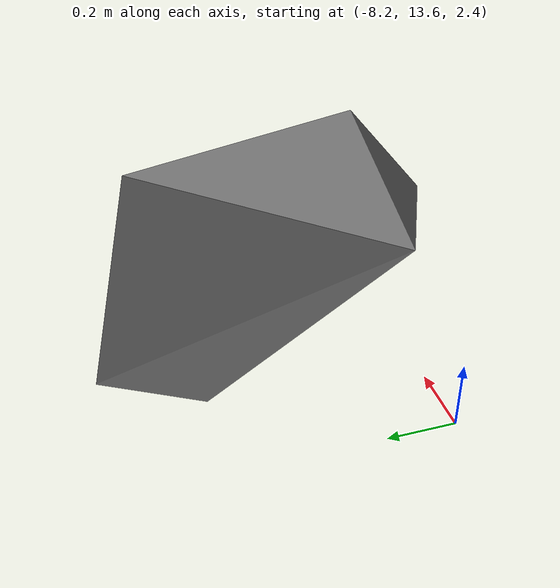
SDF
<sdf version="1.8">
 <model name="blue_mountains">
  <static>true</static>
  <link name="forest_19_21">
   <collision name="tree_9_trunk">
    <pose>-7.749354 14.27751 0.6087311 0 0 0.5486965</pose>
    <geometry><cylinder><radius>0.03873321</radius><length>2.144047</length></cylinder></geometry>
   </collision>
   <collision name="plant_9_crown_0">
    <pose>-7.762573 14.26943 -0.4632926 0 0 0.5486965</pose>
    <geometry>
     <mesh>
      <uri>model://blue_mountains/meshes/canopy_4_0.dae</uri>
      <scale>0.1549328 0.1549328 0.1597673</scale>
     </mesh>
    </geometry>
   </collision>
   <collision name="plant_9_crown_1">
    <pose>-7.762573 14.26943 -0.4632926 0 0 0.5486965</pose>
    <geometry>
     <mesh>
      <uri>model://blue_mountains/meshes/canopy_4_1.dae</uri>
      <scale>0.1549328 0.1549328 0.1597673</scale>
     </mesh>
    </geometry>
   </collision>
   <collision name="tree_101_trunk">
    <pose>-1.41527 18.55037 2.710792 0 0 1.07421</pose>
    <geometry><cylinder><radius>0.04672912</radius><length>2.79636</length></cylinder></geometry>
   </collision>
   <collision name="plant_101_crown_0">
    <pose>-1.424175 18.53394 1.312612 0 0 1.07421</pose>
    <geometry>
     <mesh>
      <uri>model://blue_mountains/meshes/canopy_2_0.dae</uri>
      <scale>0.1869165 0.1869165 0.2057433</scale>
     </mesh>
    </geometry>
   </collision>
   <collision name="plant_101_crown_1">
    <pose>-1.424175 18.53394 1.312612 0 0 1.07421</pose>
    <geometry>
     <mesh>
      <uri>model://blue_mountains/meshes/canopy_2_1.dae</uri>
      <scale>0.1869165 0.1869165 0.2057433</scale>
     </mesh>
    </geometry>
   </collision>
   <collision name="tree_107_trunk">
    <pose>-9.662786 13.92559 0.811804 0 0 1.850598</pose>
    <geometry><cylinder><radius>0.04866661</radius><length>2.87574</length></cylinder></geometry>
   </collision>
   <collision name="plant_107_crown_0">
    <pose>-9.65741 13.90688 -0.626066 0 0 1.850598</pose>
    <geometry>
     <mesh>
      <uri>model://blue_mountains/meshes/canopy_5_0.dae</uri>
      <scale>0.1946665 0.1946665 0.2161537</scale>
     </mesh>
    </geometry>
   </collision>
   <collision name="plant_107_crown_1">
    <pose>-9.65741 13.90688 -0.626066 0 0 1.850598</pose>
    <geometry>
     <mesh>
      <uri>model://blue_mountains/meshes/canopy_5_1.dae</uri>
      <scale>0.1946665 0.1946665 0.2161537</scale>
     </mesh>
    </geometry>
   </collision>
   <collision name="tree_115_trunk">
    <pose>-0.8330783 19.09846 2.739341 0 0 -2.786092</pose>
    <geometry><cylinder><radius>0.03753752</radius><length>2.250223</length></cylinder></geometry>
   </collision>
   <collision name="plant_115_crown_0">
    <pose>-0.8190022 19.10369 1.614229 0 0 -2.786092</pose>
    <geometry>
     <mesh>
      <uri>model://blue_mountains/meshes/canopy_3_0.dae</uri>
      <scale>0.1501501 0.1501501 0.1672937</scale>
     </mesh>
    </geometry>
   </collision>
   <collision name="plant_115_crown_1">
    <pose>-0.8190022 19.10369 1.614229 0 0 -2.786092</pose>
    <geometry>
     <mesh>
      <uri>model://blue_mountains/meshes/canopy_3_1.dae</uri>
      <scale>0.1501501 0.1501501 0.1672937</scale>
     </mesh>
    </geometry>
   </collision>
   <collision name="tree_132_trunk">
    <pose>-7.74738 12.39687 0.8091848 0 0 2.858679</pose>
    <geometry><cylinder><radius>0.06067959</radius><length>3.022093</length></cylinder></geometry>
   </collision>
   <collision name="plant_132_crown_0">
    <pose>-7.724073 12.39009 -0.7018619 0 0 2.858679</pose>
    <geometry>
     <mesh>
      <uri>model://blue_mountains/meshes/canopy_6_0.dae</uri>
      <scale>0.2427184 0.2427184 0.222765</scale>
     </mesh>
    </geometry>
   </collision>
   <collision name="plant_132_crown_1">
    <pose>-7.724073 12.39009 -0.7018619 0 0 2.858679</pose>
    <geometry>
     <mesh>
      <uri>model://blue_mountains/meshes/canopy_6_1.dae</uri>
      <scale>0.2427184 0.2427184 0.222765</scale>
     </mesh>
    </geometry>
   </collision>
   <collision name="tree_154_trunk">
    <pose>-5.133274 18.00331 2.443947 0 0 1.769965</pose>
    <geometry><cylinder><radius>0.06742614</radius><length>3.459712</length></cylinder></geometry>
   </collision>
   <collision name="plant_154_crown_0">
    <pose>-5.127937 17.97688 0.7140913 0 0 1.769965</pose>
    <geometry>
     <mesh>
      <uri>model://blue_mountains/meshes/canopy_2_0.dae</uri>
      <scale>0.2697046 0.2697046 0.2545496</scale>
     </mesh>
    </geometry>
   </collision>
   <collision name="plant_154_crown_1">
    <pose>-5.127937 17.97688 0.7140913 0 0 1.769965</pose>
    <geometry>
     <mesh>
      <uri>model://blue_mountains/meshes/canopy_2_1.dae</uri>
      <scale>0.2697046 0.2697046 0.2545496</scale>
     </mesh>
    </geometry>
   </collision>
   <collision name="tree_158_trunk">
    <pose>-0.7650382 17.70156 2.764641 0 0 2.606011</pose>
    <geometry><cylinder><radius>0.05212295</radius><length>3.273788</length></cylinder></geometry>
   </collision>
   <collision name="plant_158_crown_0">
    <pose>-0.7471085 17.69092 1.127747 0 0 2.606011</pose>
    <geometry>
     <mesh>
      <uri>model://blue_mountains/meshes/canopy_8_0.dae</uri>
      <scale>0.2084918 0.2084918 0.2435992</scale>
     </mesh>
    </geometry>
   </collision>
   <collision name="plant_158_crown_1">
    <pose>-0.7471085 17.69092 1.127747 0 0 2.606011</pose>
    <geometry>
     <mesh>
      <uri>model://blue_mountains/meshes/canopy_8_1.dae</uri>
      <scale>0.2084918 0.2084918 0.2435992</scale>
     </mesh>
    </geometry>
   </collision>
   <collision name="tree_170_trunk">
    <pose>-5.59117 10.59843 2.09273 0 0 -1.340736</pose>
    <geometry><cylinder><radius>0.04143292</radius><length>2.615858</length></cylinder></geometry>
   </collision>
   <collision name="plant_170_crown_0">
    <pose>-5.59495 10.61457 0.784801 0 0 -1.340736</pose>
    <geometry>
     <mesh>
      <uri>model://blue_mountains/meshes/canopy_2_0.dae</uri>
      <scale>0.1657317 0.1657317 0.1924627</scale>
     </mesh>
    </geometry>
   </collision>
   <collision name="plant_170_crown_1">
    <pose>-5.59495 10.61457 0.784801 0 0 -1.340736</pose>
    <geometry>
     <mesh>
      <uri>model://blue_mountains/meshes/canopy_2_1.dae</uri>
      <scale>0.1657317 0.1657317 0.1924627</scale>
     </mesh>
    </geometry>
   </collision>
   <collision name="tree_173_trunk">
    <pose>-6.674477 14.41577 1.503934 0 0 -0.7087129</pose>
    <geometry><cylinder><radius>0.05780722</radius><length>3.723181</length></cylinder></geometry>
   </collision>
   <collision name="plant_173_crown_0">
    <pose>-6.692032 14.43082 -0.3576562 0 0 -0.7087129</pose>
    <geometry>
     <mesh>
      <uri>model://blue_mountains/meshes/canopy_1_0.dae</uri>
      <scale>0.2312289 0.2312289 0.2749972</scale>
     </mesh>
    </geometry>
   </collision>
   <collision name="plant_173_crown_1">
    <pose>-6.692032 14.43082 -0.3576562 0 0 -0.7087129</pose>
    <geometry>
     <mesh>
      <uri>model://blue_mountains/meshes/canopy_1_1.dae</uri>
      <scale>0.2312289 0.2312289 0.2749972</scale>
     </mesh>
    </geometry>
   </collision>
   <collision name="tree_189_trunk">
    <pose>-9.635672 17.01209 1.64238 0 0 -2.180271</pose>
    <geometry><cylinder><radius>0.061286</radius><length>3.104781</length></cylinder></geometry>
   </collision>
   <collision name="plant_189_crown_0">
    <pose>-9.621639 17.03219 0.08998942 0 0 -2.180271</pose>
    <geometry>
     <mesh><uri>model://blue_mountains/meshes/canopy_4_0.dae</uri><scale>0.245144 0.245144 0.2313579</scale></mesh>
    </geometry>
   </collision>
   <collision name="plant_189_crown_1">
    <pose>-9.621639 17.03219 0.08998942 0 0 -2.180271</pose>
    <geometry>
     <mesh><uri>model://blue_mountains/meshes/canopy_4_1.dae</uri><scale>0.245144 0.245144 0.2313579</scale></mesh>
    </geometry>
   </collision>
   <collision name="tree_194_trunk">
    <pose>-4.021845 19.38885 2.321721 0 0 1.231267</pose>
    <geometry><cylinder><radius>0.0360108</radius><length>1.996998</length></cylinder></geometry>
   </collision>
   <collision name="plant_194_crown_0">
    <pose>-4.026642 19.37527 1.323222 0 0 1.231267</pose>
    <geometry>
     <mesh>
      <uri>model://blue_mountains/meshes/canopy_3_0.dae</uri>
      <scale>0.1440432 0.1440432 0.1484675</scale>
     </mesh>
    </geometry>
   </collision>
   <collision name="plant_194_crown_1">
    <pose>-4.026642 19.37527 1.323222 0 0 1.231267</pose>
    <geometry>
     <mesh>
      <uri>model://blue_mountains/meshes/canopy_3_1.dae</uri>
      <scale>0.1440432 0.1440432 0.1484675</scale>
     </mesh>
    </geometry>
   </collision>
   <collision name="tree_195_trunk">
    <pose>-2.403276 12.357 1.933132 0 0 0.992482</pose>
    <geometry><cylinder><radius>0.0724251</radius><length>4.390301</length></cylinder></geometry>
   </collision>
   <collision name="plant_195_crown_0">
    <pose>-2.419111 12.33274 -0.2620192 0 0 0.992482</pose>
    <geometry>
     <mesh>
      <uri>model://blue_mountains/meshes/canopy_2_0.dae</uri>
      <scale>0.2897004 0.2897004 0.3230181</scale>
     </mesh>
    </geometry>
   </collision>
   <collision name="plant_195_crown_1">
    <pose>-2.419111 12.33274 -0.2620192 0 0 0.992482</pose>
    <geometry>
     <mesh>
      <uri>model://blue_mountains/meshes/canopy_2_1.dae</uri>
      <scale>0.2897004 0.2897004 0.3230181</scale>
     </mesh>
    </geometry>
   </collision>
   <collision name="tree_218_trunk">
    <pose>-7.609633 18.14726 2.117375 0 0 1.855371</pose>
    <geometry><cylinder><radius>0.05481712</radius><length>3.109203</length></cylinder></geometry>
   </collision>
   <collision name="plant_218_crown_0">
    <pose>-7.603477 18.12621 0.5627737 0 0 1.855371</pose>
    <geometry>
     <mesh>
      <uri>model://blue_mountains/meshes/canopy_1_0.dae</uri>
      <scale>0.2192685 0.2192685 0.2296483</scale>
     </mesh>
    </geometry>
   </collision>
   <collision name="plant_218_crown_1">
    <pose>-7.603477 18.12621 0.5627737 0 0 1.855371</pose>
    <geometry>
     <mesh>
      <uri>model://blue_mountains/meshes/canopy_1_1.dae</uri>
      <scale>0.2192685 0.2192685 0.2296483</scale>
     </mesh>
    </geometry>
   </collision>
   <collision name="tree_291_trunk">
    <pose>-7.440081 15.78451 1.176549 0 0 2.330481</pose>
    <geometry><cylinder><radius>0.04610728</radius><length>2.596587</length></cylinder></geometry>
   </collision>
   <collision name="plant_291_crown_0">
    <pose>-7.42738 15.77114 -0.1217446 0 0 2.330481</pose>
    <geometry>
     <mesh>
      <uri>model://blue_mountains/meshes/canopy_6_0.dae</uri>
      <scale>0.1844291 0.1844291 0.1914001</scale>
     </mesh>
    </geometry>
   </collision>
   <collision name="plant_291_crown_1">
    <pose>-7.42738 15.77114 -0.1217446 0 0 2.330481</pose>
    <geometry>
     <mesh>
      <uri>model://blue_mountains/meshes/canopy_6_1.dae</uri>
      <scale>0.1844291 0.1844291 0.1914001</scale>
     </mesh>
    </geometry>
   </collision>
   <collision name="tree_304_trunk">
    <pose>-9.871956 13.5523 0.1872127 0 0 -2.88669</pose>
    <geometry><cylinder><radius>0.03596601</radius><length>1.751853</length></cylinder></geometry>
   </collision>
   <collision name="plant_304_crown_0">
    <pose>-9.858034 13.55592 -0.6887136 0 0 -2.88669</pose>
    <geometry>
     <mesh>
      <uri>model://blue_mountains/meshes/canopy_7_0.dae</uri>
      <scale>0.1438641 0.1438641 0.1317154</scale>
     </mesh>
    </geometry>
   </collision>
   <collision name="plant_304_crown_1">
    <pose>-9.858034 13.55592 -0.6887136 0 0 -2.88669</pose>
    <geometry>
     <mesh>
      <uri>model://blue_mountains/meshes/canopy_7_1.dae</uri>
      <scale>0.1438641 0.1438641 0.1317154</scale>
     </mesh>
    </geometry>
   </collision>
   <collision name="tree_319_trunk">
    <pose>-8.9989 13.40129 0.753694 0 0 2.843267</pose>
    <geometry><cylinder><radius>0.0482313</radius><length>2.849331</length></cylinder></geometry>
   </collision>
   <collision name="plant_319_crown_0">
    <pose>-8.980459 13.39562 -0.6709714 0 0 2.843267</pose>
    <geometry>
     <mesh>
      <uri>model://blue_mountains/meshes/canopy_3_0.dae</uri>
      <scale>0.1929252 0.1929252 0.2118345</scale>
     </mesh>
    </geometry>
   </collision>
   <collision name="plant_319_crown_1">
    <pose>-8.980459 13.39562 -0.6709714 0 0 2.843267</pose>
    <geometry>
     <mesh>
      <uri>model://blue_mountains/meshes/canopy_3_1.dae</uri>
      <scale>0.1929252 0.1929252 0.2118345</scale>
     </mesh>
    </geometry>
   </collision>
   <collision name="tree_341_trunk">
    <pose>-1.476734 14.82429 1.578484 0 0 -0.2949727</pose>
    <geometry><cylinder><radius>0.04367276</radius><length>2.708307</length></cylinder></geometry>
   </collision>
   <collision name="plant_341_crown_0">
    <pose>-1.493448 14.82937 0.2243302 0 0 -0.2949727</pose>
    <geometry>
     <mesh>
      <uri>model://blue_mountains/meshes/canopy_8_0.dae</uri>
      <scale>0.1746911 0.1746911 0.2015223</scale>
     </mesh>
    </geometry>
   </collision>
   <collision name="plant_341_crown_1">
    <pose>-1.493448 14.82937 0.2243302 0 0 -0.2949727</pose>
    <geometry>
     <mesh>
      <uri>model://blue_mountains/meshes/canopy_8_1.dae</uri>
      <scale>0.1746911 0.1746911 0.2015223</scale>
     </mesh>
    </geometry>
   </collision>
   <collision name="tree_365_trunk">
    <pose>-6.306234 13.90482 1.652748 0 0 1.173758</pose>
    <geometry><cylinder><radius>0.06446014</radius><length>4.146493</length></cylinder></geometry>
   </collision>
   <collision name="plant_365_crown_0">
    <pose>-6.316204 13.88104 -0.4204981 0 0 1.173758</pose>
    <geometry>
     <mesh>
      <uri>model://blue_mountains/meshes/canopy_8_0.dae</uri>
      <scale>0.2578406 0.2578406 0.3085362</scale>
     </mesh>
    </geometry>
   </collision>
   <collision name="plant_365_crown_1">
    <pose>-6.316204 13.88104 -0.4204981 0 0 1.173758</pose>
    <geometry>
     <mesh>
      <uri>model://blue_mountains/meshes/canopy_8_1.dae</uri>
      <scale>0.2578406 0.2578406 0.3085362</scale>
     </mesh>
    </geometry>
   </collision>
   <collision name="tree_366_trunk">
    <pose>-4.599239 11.76125 0.1328587 0 0 -3.047308</pose>
    <geometry><cylinder><radius>0.03949971</radius><length>2.08495</length></cylinder></geometry>
   </collision>
   <collision name="plant_366_crown_0">
    <pose>-4.583509 11.76274 -0.9096162 0 0 -3.047308</pose>
    <geometry>
     <mesh>
      <uri>model://blue_mountains/meshes/canopy_1_0.dae</uri>
      <scale>0.1579989 0.1579989 0.1539961</scale>
     </mesh>
    </geometry>
   </collision>
   <collision name="plant_366_crown_1">
    <pose>-4.583509 11.76274 -0.9096162 0 0 -3.047308</pose>
    <geometry>
     <mesh>
      <uri>model://blue_mountains/meshes/canopy_1_1.dae</uri>
      <scale>0.1579989 0.1579989 0.1539961</scale>
     </mesh>
    </geometry>
   </collision>
   <collision name="tree_374_trunk">
    <pose>-1.180952 12.11507 1.288036 0 0 -0.4323776</pose>
    <geometry><cylinder><radius>0.05560605</radius><length>2.930026</length></cylinder></geometry>
   </collision>
   <collision name="plant_374_crown_0">
    <pose>-1.201147 12.12439 -0.1769767 0 0 -0.4323776</pose>
    <geometry>
     <mesh>
      <uri>model://blue_mountains/meshes/canopy_0_0.dae</uri>
      <scale>0.2224242 0.2224242 0.2160877</scale>
     </mesh>
    </geometry>
   </collision>
   <collision name="plant_374_crown_1">
    <pose>-1.201147 12.12439 -0.1769767 0 0 -0.4323776</pose>
    <geometry>
     <mesh>
      <uri>model://blue_mountains/meshes/canopy_0_1.dae</uri>
      <scale>0.2224242 0.2224242 0.2160877</scale>
     </mesh>
    </geometry>
   </collision>
   <collision name="tree_414_trunk">
    <pose>-8.436597 11.09921 0.8669526 0 0 -0.5295275</pose>
    <geometry><cylinder><radius>0.045451</radius><length>2.530361</length></cylinder></geometry>
   </collision>
   <collision name="plant_414_crown_0">
    <pose>-8.452288 11.10839 -0.3982279 0 0 -0.5295275</pose>
    <geometry>
     <mesh><uri>model://blue_mountains/meshes/canopy_1_0.dae</uri><scale>0.181804 0.181804 0.1868945</scale></mesh>
    </geometry>
   </collision>
   <collision name="plant_414_crown_1">
    <pose>-8.452288 11.10839 -0.3982279 0 0 -0.5295275</pose>
    <geometry>
     <mesh><uri>model://blue_mountains/meshes/canopy_1_1.dae</uri><scale>0.181804 0.181804 0.1868945</scale></mesh>
    </geometry>
   </collision>
   <collision name="tree_455_trunk">
    <pose>-0.679761 18.80318 2.834126 0 0 1.233447</pose>
    <geometry><cylinder><radius>0.05231684</radius><length>2.632409</length></cylinder></geometry>
   </collision>
   <collision name="plant_455_crown_0">
    <pose>-0.6866875 18.78343 1.517921 0 0 1.233447</pose>
    <geometry>
     <mesh>
      <uri>model://blue_mountains/meshes/canopy_4_0.dae</uri>
      <scale>0.2092674 0.2092674 0.1961583</scale>
     </mesh>
    </geometry>
   </collision>
   <collision name="plant_455_crown_1">
    <pose>-0.6866875 18.78343 1.517921 0 0 1.233447</pose>
    <geometry>
     <mesh>
      <uri>model://blue_mountains/meshes/canopy_4_1.dae</uri>
      <scale>0.2092674 0.2092674 0.1961583</scale>
     </mesh>
    </geometry>
   </collision>
   <collision name="tree_456_trunk">
    <pose>-2.777798 12.63416 1.206748 0 0 0.5045755</pose>
    <geometry><cylinder><radius>0.04727989</radius><length>2.940019</length></cylinder></geometry>
   </collision>
   <collision name="plant_456_crown_0">
    <pose>-2.794353 12.62502 -0.2632616 0 0 0.5045755</pose>
    <geometry>
     <mesh>
      <uri>model://blue_mountains/meshes/canopy_7_0.dae</uri>
      <scale>0.1891196 0.1891196 0.2210493</scale>
     </mesh>
    </geometry>
   </collision>
   <collision name="plant_456_crown_1">
    <pose>-2.794353 12.62502 -0.2632616 0 0 0.5045755</pose>
    <geometry>
     <mesh>
      <uri>model://blue_mountains/meshes/canopy_7_1.dae</uri>
      <scale>0.1891196 0.1891196 0.2210493</scale>
     </mesh>
    </geometry>
   </collision>
   <collision name="tree_459_trunk">
    <pose>-2.801568 10.61991 1.168801 0 0 0.2648963</pose>
    <geometry><cylinder><radius>0.05204311</radius><length>2.741854</length></cylinder></geometry>
   </collision>
   <collision name="plant_459_crown_0">
    <pose>-2.821659 10.61446 -0.2021255 0 0 0.2648963</pose>
    <geometry>
     <mesh>
      <uri>model://blue_mountains/meshes/canopy_6_0.dae</uri>
      <scale>0.2081724 0.2081724 0.202108</scale>
     </mesh>
    </geometry>
   </collision>
   <collision name="plant_459_crown_1">
    <pose>-2.821659 10.61446 -0.2021255 0 0 0.2648963</pose>
    <geometry>
     <mesh>
      <uri>model://blue_mountains/meshes/canopy_6_1.dae</uri>
      <scale>0.2081724 0.2081724 0.202108</scale>
     </mesh>
    </geometry>
   </collision>
   <visual name="forest_visual">
    <geometry><mesh><uri>model://blue_mountains/meshes/forest_19_21.dae</uri></mesh></geometry>
    <cast_shadows>false</cast_shadows>
   </visual>
  </link>
 </model>
</sdf>
